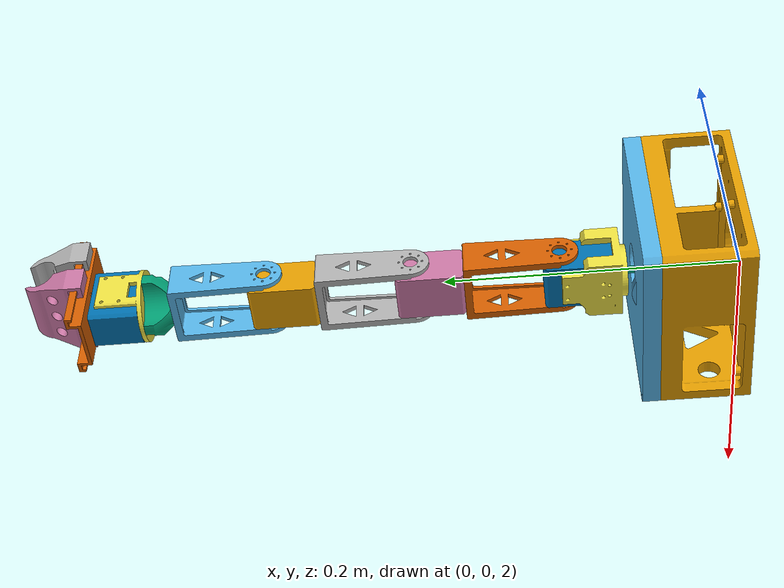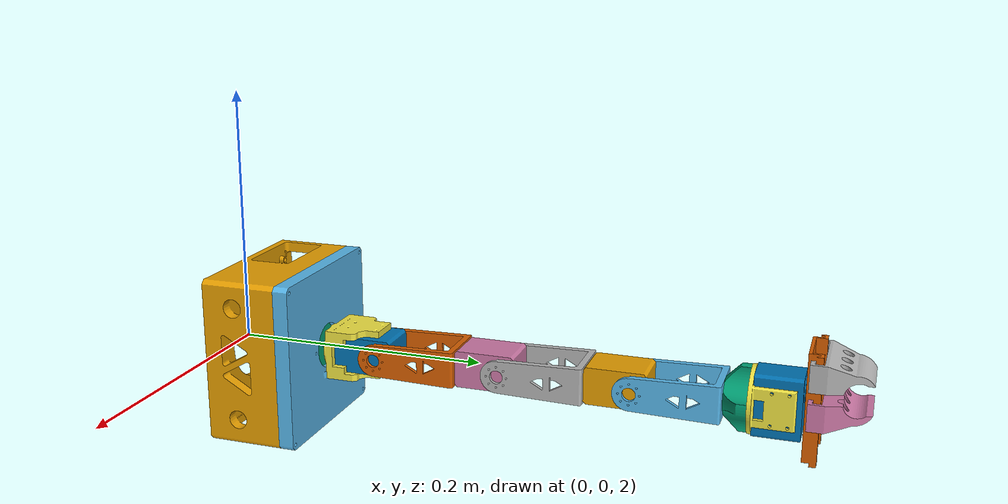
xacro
<?xml version="1.0"?>
<robot xmlns:xacro="http://wiki.ros.org/xacro" name="perseus">
  <xacro:arg name="transmission_hw_interface" default="hardware_interface/PositionJointInterface"/>
  <xacro:arg name="parent" default="world"/>
  <xacro:arg name="namespace" default="perseus"/>
  <xacro:arg name="xyzpos" default="0.0 0.0 2.0"/>

  <!-- common -->
  <xacro:include filename="$(find perseus_description)/urdf/common.gazebo.xacro"/>

  <!-- perseus -->
  <xacro:include filename="$(find perseus_description)/urdf/perseus.urdf.xacro"/>
  <xacro:perseus_arm transmission_hw_interface="$(arg transmission_hw_interface)" namespace="$(arg namespace)"/>

  <!-- Link robot to world -->
  <link name="$(arg parent)"/>

  <joint name="anchor_joint" type="fixed">
    <parent link="$(arg parent)"/>
    <child link="$(arg namespace)/base"/>
    <origin rpy="0 0 0" xyz="$(arg xyzpos)"/>
  </joint>
</robot>

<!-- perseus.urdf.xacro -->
<robot xmlns:xacro="http://wiki.ros.org/xacro">
  <xacro:include filename="$(find perseus_description)/urdf/perseus.transmission.xacro"/>
  <xacro:include filename="$(find perseus_description)/urdf/perseus.gazebo.xacro"/>

  <xacro:macro name="perseus_arm" params="transmission_hw_interface namespace">
    <xacro:property name="scale" value="0.001"/>
    <xacro:property name="joint_scale" value="1"/>
    <!-- Start of main robot body -->
    <link name="${namespace}/base">
      <inertial>
        <origin rpy="0 0 0" xyz="0.009606900148155705 0.025047580656759237 0.0006409385755152207"/>
        <mass value="0.20859614956718134"/>
        <inertia ixx="0.000557" ixy="-1e-06" ixz="-4.8e-05" iyy="0.000924" iyz="-3e-06" izz="0.000556"/>
      </inertial>
      <visual>
        <origin rpy="0 0 0" xyz="0 0 0"/>
        <geometry>
          <mesh filename="package://perseus_description/meshes/base_link.stl" scale="${scale} ${scale} ${scale}"/>
        </geometry>
      </visual>
      <collision>
        <origin rpy="0 0 0" xyz="0 0 0"/>
        <geometry>
          <mesh filename="package://perseus_description/meshes/base_link.stl" scale="${scale} ${scale} ${scale}"/>
        </geometry>
      </collision>
    </link>

    <link name="${namespace}/basePlate_v18_1">
      <inertial>
        <origin rpy="0 0 0" xyz="0.06080674862882992 0.007989157863473588 0.060697501122834334"/>
        <mass value="0.10739714114224669"/>
        <inertia ixx="0.000185" ixy="0.0" ixz="-0.0" iyy="0.00038" iyz="0.0" izz="0.000198"/>
      </inertial>
      <visual>
        <origin rpy="0 0 0" xyz="0.060705 -0.060123 0.060773"/>
        <geometry>
          <mesh filename="package://perseus_description/meshes/basePlate_v18_1.stl" scale="${scale} ${scale} ${scale}"/>
        </geometry>
      </visual>
      <collision>
        <origin rpy="0 0 0" xyz="0.060705 -0.060123 0.060773"/>
        <geometry>
          <mesh filename="package://perseus_description/meshes/basePlate_v18_1.stl" scale="${scale} ${scale} ${scale}"/>
        </geometry>
      </collision>
    </link>

    <link name="${namespace}/Stepper_v5_1">
      <inertial>
        <origin rpy="0 0 0" xyz="5.218509840461329e-08 -0.009658638044550236 3.7698044210816435e-07"/>
        <mass value="0.164439959012558"/>
        <inertia ixx="1.9e-05" ixy="-0.0" ixz="-0.0" iyy="2.7e-05" iyz="0.0" izz="2e-05"/>
      </inertial>
      <visual>
        <origin rpy="0 0 0" xyz="-0.000104 -0.067623 2.3e-05"/>
        <geometry>
          <mesh filename="package://perseus_description/meshes/Stepper_v5_1.stl" scale="${scale} ${scale} ${scale}"/>
        </geometry>
      </visual>
      <collision>
        <origin rpy="0 0 0" xyz="-0.000104 -0.067623 2.3e-05"/>
        <geometry>
          <mesh filename="package://perseus_description/meshes/Stepper_v5_1.stl" scale="${scale} ${scale} ${scale}"/>
        </geometry>
      </collision>
    </link>

    <link name="${namespace}/link1_v12_1">
      <inertial>
        <origin rpy="0 0 0" xyz="-0.0005835884695255211 0.011699826982647002 2.0584927118683997e-05"/>
        <mass value="0.026558895460486103"/>
        <inertia ixx="9e-06" ixy="0.0" ixz="-0.0" iyy="1e-05" iyz="0.0" izz="8e-06"/>
      </inertial>
      <visual>
        <origin rpy="0 0 0" xyz="-0.000104 -0.080623 2.3e-05"/>
        <geometry>
          <mesh filename="package://perseus_description/meshes/link1_v12_1.stl" scale="${scale} ${scale} ${scale}"/>
        </geometry>
      </visual>
      <collision>
        <origin rpy="0 0 0" xyz="-0.000104 -0.080623 2.3e-05"/>
        <geometry>
          <mesh filename="package://perseus_description/meshes/link1_v12_1.stl" scale="${scale} ${scale} ${scale}"/>
        </geometry>
      </collision>
    </link>

    <link name="${namespace}/Dynamixel_1_1">
      <inertial>
        <origin rpy="0 0 0" xyz="-3.990798697923084e-05 0.023425508667773945 3.9032703642453347e-07"/>
        <mass value="0.356701544919362"/>
        <inertia ixx="8.7e-05" ixy="0.0" ixz="0.0" iyy="5.9e-05" iyz="-0.0" izz="9.9e-05"/>
      </inertial>
      <visual>
        <origin rpy="0 0 0" xyz="-0.000104 -0.085773 2.3e-05"/>
        <geometry>
          <mesh filename="package://perseus_description/meshes/Dynamixel_1_1.stl" scale="${scale} ${scale} ${scale}"/>
        </geometry>
      </visual>
      <collision>
        <origin rpy="0 0 0" xyz="-0.000104 -0.085773 2.3e-05"/>
        <geometry>
          <mesh filename="package://perseus_description/meshes/Dynamixel_1_1.stl" scale="${scale} ${scale} ${scale}"/>
        </geometry>
      </collision>
    </link>

    <link name="${namespace}/Link_v5_1">
      <inertial>
        <origin rpy="0 0 0" xyz="0.019404821558247024 0.037443419960172294 3.83299057001476e-07"/>
        <mass value="0.01662330410690611"/>
        <inertia ixx="1e-05" ixy="-0.0" ixz="0.0" iyy="7e-06" iyz="-0.0" izz="1.5e-05"/>
      </inertial>
      <visual>
        <origin rpy="0 0 0" xyz="0.018896 -0.121024 2.2e-05"/>
        <geometry>
          <mesh filename="package://perseus_description/meshes/Link_v5_1.stl" scale="${scale} ${scale} ${scale}"/>
        </geometry>
      </visual>
      <collision>
        <origin rpy="0 0 0" xyz="0.018896 -0.121024 2.2e-05"/>
        <geometry>
          <mesh filename="package://perseus_description/meshes/Link_v5_1.stl" scale="${scale} ${scale} ${scale}"/>
        </geometry>
      </collision>
    </link>

    <link name="${namespace}/Dynamixel_2_1">
      <inertial>
        <origin rpy="0 0 0" xyz="-3.9907986979175033e-05 0.023425071019905652 3.055729170690188e-07"/>
        <mass value="0.356701544919362"/>
        <inertia ixx="8.7e-05" ixy="0.0" ixz="0.0" iyy="5.9e-05" iyz="-0.0" izz="9.9e-05"/>
      </inertial>
      <visual>
        <origin rpy="0 0 0" xyz="-0.000504 -0.186324 2.2e-05"/>
        <geometry>
          <mesh filename="package://perseus_description/meshes/Dynamixel_2_1.stl" scale="${scale} ${scale} ${scale}"/>
        </geometry>
      </visual>
      <collision>
        <origin rpy="0 0 0" xyz="-0.000504 -0.186324 2.2e-05"/>
        <geometry>
          <mesh filename="package://perseus_description/meshes/Dynamixel_2_1.stl" scale="${scale} ${scale} ${scale}"/>
        </geometry>
      </collision>
    </link>

    <link name="${namespace}/Link_v5__1__1">
      <inertial>
        <origin rpy="0 0 0" xyz="0.02095482155824711 0.037442982312304 2.985449376563934e-07"/>
        <mass value="0.01662330410690611"/>
        <inertia ixx="1e-05" ixy="-0.0" ixz="0.0" iyy="7e-06" iyz="-0.0" izz="1.5e-05"/>
      </inertial>
      <visual>
        <origin rpy="0 0 0" xyz="0.019496 -0.221575 2.1e-05"/>
        <geometry>
          <mesh filename="package://perseus_description/meshes/Link_v5__1__1.stl" scale="${scale} ${scale} ${scale}"/>
        </geometry>
      </visual>
      <collision>
        <origin rpy="0 0 0" xyz="0.019496 -0.221575 2.1e-05"/>
        <geometry>
          <mesh filename="package://perseus_description/meshes/Link_v5__1__1.stl" scale="${scale} ${scale} ${scale}"/>
        </geometry>
      </collision>
    </link>

    <link name="${namespace}/Dynamixel_3_1">
      <inertial>
        <origin rpy="0 0 0" xyz="-3.990798697908857e-05 0.023424633372037318 2.208187977353406e-07"/>
        <mass value="0.356701544919362"/>
        <inertia ixx="8.7e-05" ixy="0.0" ixz="0.0" iyy="5.9e-05" iyz="-0.0" izz="9.9e-05"/>
      </inertial>
      <visual>
        <origin rpy="0 0 0" xyz="-0.001454 -0.286875 2.1e-05"/>
        <geometry>
          <mesh filename="package://perseus_description/meshes/Dynamixel_3_1.stl" scale="${scale} ${scale} ${scale}"/>
        </geometry>
      </visual>
      <collision>
        <origin rpy="0 0 0" xyz="-0.001454 -0.286875 2.1e-05"/>
        <geometry>
          <mesh filename="package://perseus_description/meshes/Dynamixel_3_1.stl" scale="${scale} ${scale} ${scale}"/>
        </geometry>
      </collision>
    </link>

    <link name="${namespace}/Link_v5__2__1">
      <inertial>
        <origin rpy="0 0 0" xyz="0.02095482155824717 0.037443544664435724 2.1379081833307952e-07"/>
        <mass value="0.01662330410690611"/>
        <inertia ixx="1e-05" ixy="-0.0" ixz="0.0" iyy="7e-06" iyz="-0.0" izz="1.5e-05"/>
      </inertial>
      <visual>
        <origin rpy="0 0 0" xyz="0.018546 -0.322125 2e-05"/>
        <geometry>
          <mesh filename="package://perseus_description/meshes/Link_v5__2__1.stl" scale="${scale} ${scale} ${scale}"/>
        </geometry>
      </visual>
      <collision>
        <origin rpy="0 0 0" xyz="0.018546 -0.322125 2e-05"/>
        <geometry>
          <mesh filename="package://perseus_description/meshes/Link_v5__2__1.stl" scale="${scale} ${scale} ${scale}"/>
        </geometry>
      </collision>
    </link>

    <link name="${namespace}/gripL2_v14_1">
      <inertial>
        <origin rpy="0 0 0" xyz="5.2185256943851344e-08 0.009822354343600626 1.2271808408696706e-07"/>
        <mass value="0.013959782041853887"/>
        <inertia ixx="2e-06" ixy="0.0" ixz="-0.0" iyy="3e-06" iyz="0.0" izz="2e-06"/>
      </inertial>
      <visual>
        <origin rpy="0 0 0" xyz="-0.002404 -0.387425 2e-05"/>
        <geometry>
          <mesh filename="package://perseus_description/meshes/gripL2_v14_1.stl" scale="${scale} ${scale} ${scale}"/>
        </geometry>
      </visual>
      <collision>
        <origin rpy="0 0 0" xyz="-0.002404 -0.387425 2e-05"/>
        <geometry>
          <mesh filename="package://perseus_description/meshes/gripL2_v14_1.stl" scale="${scale} ${scale} ${scale}"/>
        </geometry>
      </collision>
    </link>

    <link name="${namespace}/gripL1_v7_1">
      <inertial>
        <origin rpy="0 0 0" xyz="5.2185103533147065e-08 0.009633445542812646 9.474598607199126e-05"/>
        <mass value="0.011468373721129618"/>
        <inertia ixx="3e-06" ixy="0.0" ixz="0.0" iyy="4e-06" iyz="0.0" izz="4e-06"/>
      </inertial>
      <visual>
        <origin rpy="0 0 0" xyz="-0.002404 -0.405425 2e-05"/>
        <geometry>
          <mesh filename="package://perseus_description/meshes/gripL1_v7_1.stl" scale="${scale} ${scale} ${scale}"/>
        </geometry>
      </visual>
      <collision>
        <origin rpy="0 0 0" xyz="-0.002404 -0.405425 2e-05"/>
        <geometry>
          <mesh filename="package://perseus_description/meshes/gripL1_v7_1.stl" scale="${scale} ${scale} ${scale}"/>
        </geometry>
      </collision>
    </link>

    <link name="${namespace}/ModifiedDynamixel_v12_1">
      <inertial>
        <origin rpy="0 0 0" xyz="3.8838509168730856e-08 0.01704002455162823 0.00017511907776649003"/>
        <mass value="0.35670154491936157"/>
        <inertia ixx="9.9e-05" ixy="0.0" ixz="0.0" iyy="8.7e-05" iyz="-0.0" izz="5.9e-05"/>
      </inertial>
      <visual>
        <origin rpy="0 0 0" xyz="-0.002404 -0.408425 2e-05"/>
        <geometry>
          <mesh filename="package://perseus_description/meshes/ModifiedDynamixel_v12_1.stl" scale="${scale} ${scale} ${scale}"/>
        </geometry>
      </visual>
      <collision>
        <origin rpy="0 0 0" xyz="-0.002404 -0.408425 2e-05"/>
        <geometry>
          <mesh filename="package://perseus_description/meshes/ModifiedDynamixel_v12_1.stl" scale="${scale} ${scale} ${scale}"/>
        </geometry>
      </collision>
    </link>

    <link name="${namespace}/EETrack_rebuild_v6_1">
      <inertial>
        <origin rpy="0 0 0" xyz="0.0005882832570395739 0.0030255190907269025 -0.007437121872838118"/>
        <mass value="0.01274507441724117"/>
        <inertia ixx="7e-06" ixy="0.0" ixz="-0.0" iyy="1e-05" iyz="-0.0" izz="3e-06"/>
      </inertial>
      <visual>
        <origin rpy="0 0 0" xyz="-0.002403 -0.445425 -0.011981"/>
        <geometry>
          <mesh filename="package://perseus_description/meshes/EETrack_rebuild_v6_1.stl" scale="${scale} ${scale} ${scale}"/>
        </geometry>
      </visual>
      <collision>
        <origin rpy="0 0 0" xyz="-0.002403 -0.445425 -0.011981"/>
        <geometry>
          <mesh filename="package://perseus_description/meshes/EETrack_rebuild_v6_1.stl" scale="${scale} ${scale} ${scale}"/>
        </geometry>
      </collision>
    </link>

    <link name="${namespace}/Grip_v5_1">
      <inertial>
        <origin rpy="0 0 0" xyz="1.3652826758372982e-07 0.013322586240661238 -0.009633875691665562"/>
        <mass value="0.019987551824594305"/>
        <inertia ixx="2e-06" ixy="-0.0" ixz="-0.0" iyy="6e-06" iyz="-0.0" izz="7e-06"/>
      </inertial>
      <visual>
        <origin rpy="0 0 0" xyz="-0.002403 -0.450625 -0.011981"/>
        <geometry>
          <mesh filename="package://perseus_description/meshes/Grip_v5_1.stl" scale="${scale} ${scale} ${scale}"/>
        </geometry>
      </visual>
      <collision>
        <origin rpy="0 0 0" xyz="-0.002403 -0.450625 -0.011981"/>
        <geometry>
          <mesh filename="package://perseus_description/meshes/Grip_v5_1.stl" scale="${scale} ${scale} ${scale}"/>
        </geometry>
      </collision>
    </link>

    <link name="${namespace}/Grip_v5__1__1">
      <inertial>
        <origin rpy="0 0 0" xyz="-0.03439086293294389 -0.4309024137593389 0.05460097586221573"/>
        <mass value="0.019987551824594305"/>
        <inertia ixx="2e-06" ixy="0.0" ixz="-0.0" iyy="6e-06" iyz="0.0" izz="7e-06"/>
      </inertial>
      <visual>
        <origin rpy="0 0 0" xyz="-0.037423 -0.89485 0.031987"/>
        <geometry>
          <mesh filename="package://perseus_description/meshes/Grip_v5__1__1.stl" scale="${scale} ${scale} ${scale}"/>
        </geometry>
      </visual>
      <collision>
        <origin rpy="0 0 0" xyz="-0.037423 -0.89485 0.031987"/>
        <geometry>
          <mesh filename="package://perseus_description/meshes/Grip_v5__1__1.stl" scale="${scale} ${scale} ${scale}"/>
        </geometry>
      </collision>
    </link>

    <joint name="${namespace}/Rigid1" type="fixed">
      <origin rpy="0 0 0" xyz="${joint_scale*-0.060705} ${joint_scale*0.060123} ${joint_scale*-0.060773}"/>
      <parent link="${namespace}/base"/>
      <child link="${namespace}/basePlate_v18_1"/>
    </joint>

    <joint name="${namespace}/Rigid2" type="fixed">
      <origin rpy="0 0 0" xyz="${joint_scale*0.060809} ${joint_scale*0.0075} ${joint_scale*0.06075}"/>
      <parent link="${namespace}/basePlate_v18_1"/>
      <child link="${namespace}/Stepper_v5_1"/>
    </joint>

    <joint name="${namespace}/Rev3" type="revolute">
      <origin rpy="0 0 0" xyz="0.0 ${joint_scale*0.013} 0.0"/>
      <parent link="${namespace}/Stepper_v5_1"/>
      <child link="${namespace}/link1_v12_1"/>
      <axis xyz="-0.0 1.0 0.0"/>
      <limit effort="100" lower="0.0" upper="6.108652" velocity="100"/>
    </joint>

    <joint name="${namespace}/Rigid4" type="fixed">
      <origin rpy="0 0 0" xyz="0.0 ${joint_scale*0.00515} 0.0"/>
      <parent link="${namespace}/link1_v12_1"/>
      <child link="${namespace}/Dynamixel_1_1"/>
    </joint>

    <joint name="${namespace}/Rev5" type="revolute">
      <origin rpy="0 0 0" xyz="${joint_scale*-0.019} 0.035251 ${joint_scale*1e-06}"/>
      <parent link="${namespace}/Dynamixel_1_1"/>
      <child link="${namespace}/Link_v5_1"/>
      <axis xyz="-1.0 -0.0 0.0"/>
      <limit effort="100" lower="-1.570796" upper="1.570796" velocity="100"/>
    </joint>

    <joint name="${namespace}/Rigid6" type="fixed">
      <origin rpy="0 0 0" xyz="${joint_scale*0.0194} ${joint_scale*0.0653} 0.0"/>
      <parent link="${namespace}/Link_v5_1"/>
      <child link="${namespace}/Dynamixel_2_1"/>
    </joint>

    <joint name="${namespace}/Rev7" type="continuous">
      <origin rpy="0 0 0" xyz="${joint_scale*-0.02} ${joint_scale*0.035251} ${joint_scale*1e-06}"/>
      <parent link="${namespace}/Dynamixel_2_1"/>
      <child link="${namespace}/Link_v5__1__1"/>
      <axis xyz="-1.0 -0.0 0.0"/>
    </joint>

    <joint name="${namespace}/Rigid8" type="fixed">
      <origin rpy="0 0 0" xyz="${joint_scale*0.02095} ${joint_scale*0.0653} 0.0"/>
      <parent link="${namespace}/Link_v5__1__1"/>
      <child link="${namespace}/Dynamixel_3_1"/>
    </joint>

    <joint name="${namespace}/Rev9" type="revolute">
      <origin rpy="0 0 0" xyz="${joint_scale*-0.02} ${joint_scale*0.03525} ${joint_scale*1e-06}"/>
      <parent link="${namespace}/Dynamixel_3_1"/>
      <child link="${namespace}/Link_v5__2__1"/>
      <axis xyz="-1.0 -0.0 0.0"/>
      <limit effort="100" lower="-1.570796" upper="1.570796" velocity="100"/>
    </joint>

    <joint name="${namespace}/Rigid10" type="fixed">
      <origin rpy="0 0 0" xyz="${joint_scale*0.02095} ${joint_scale*0.0653} 0.0"/>
      <parent link="${namespace}/Link_v5__2__1"/>
      <child link="${namespace}/gripL2_v14_1"/>
    </joint>

    <joint name="${namespace}/Rigid12" type="fixed">
      <origin rpy="0 0 0" xyz="0.0 ${joint_scale*0.018} 0.0"/>
      <parent link="${namespace}/gripL2_v14_1"/>
      <child link="${namespace}/gripL1_v7_1"/>
    </joint>

    <joint name="${namespace}/Rigid13" type="fixed">
      <origin rpy="0 0 0" xyz="0.0 ${joint_scale*0.003} 0.0"/>
      <parent link="${namespace}/gripL1_v7_1"/>
      <child link="${namespace}/ModifiedDynamixel_v12_1"/>
    </joint>

    <joint name="${namespace}/Rigid14" type="fixed">
      <origin rpy="0 0 0" xyz="${joint_scale*-1e-06} ${joint_scale*0.037} ${joint_scale*0.012001}"/>
      <parent link="${namespace}/ModifiedDynamixel_v12_1"/>
      <child link="${namespace}/EETrack_rebuild_v6_1"/>
    </joint>

    <joint name="${namespace}/Slider16" type="prismatic">
      <origin rpy="0 0 0" xyz="0.0 ${joint_scale*0.0052} 0.0"/>
      <parent link="${namespace}/EETrack_rebuild_v6_1"/>
      <child link="${namespace}/Grip_v5_1"/>
      <axis xyz="0.0 -0.0 1.0"/>
      <limit effort="100" lower="-0.015" upper="0.0" velocity="100"/>
    </joint>

    <joint name="${namespace}/Slider17" type="prismatic">
      <origin rpy="0 0 0" xyz="${joint_scale*0.03502} ${joint_scale*0.449425} ${joint_scale*-0.043968}"/>
      <parent link="${namespace}/EETrack_rebuild_v6_1"/>
      <child link="${namespace}/Grip_v5__1__1"/>
      <axis xyz="0.0 -0.0 1.0"/>
      <limit effort="100" lower="0.0048" upper="0.01" velocity="100"/>
    </joint>

    <!-- Call required xacro macros -->
    <!-- Transmission -->
    <xacro:perseus_arm_transmission hw_interface="${transmission_hw_interface}" namespace="${namespace}"/>
      <!-- Gazebo macro -->
    <xacro:perseus_arm_gazebo namespace="${namespace}"/>

  </xacro:macro>

</robot>

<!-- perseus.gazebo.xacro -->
<robot name="perseus" xmlns:xacro="http://www.ros.org/wiki/xacro" >
  <xacro:macro name="perseus_arm_gazebo" params="namespace">
    <xacro:property name="body_color" value="Gazebo/Silver" />
    <gazebo reference="base_link">
      <material>${body_color}</material>
      <mu1>0.2</mu1>
      <mu2>0.2</mu2>
      <selfCollide>true</selfCollide>
      <gravity>true</gravity>
    </gazebo>
    <gazebo reference="basePlate_v18_1">
      <material>${body_color}</material>
      <mu1>0.2</mu1>
      <mu2>0.2</mu2>
      <selfCollide>true</selfCollide>
    </gazebo>
    <gazebo reference="Stepper_v5_1">
      <material>${body_color}</material>
      <mu1>0.2</mu1>
      <mu2>0.2</mu2>
      <selfCollide>true</selfCollide>
    </gazebo>
    <gazebo reference="link1_v12_1">
      <material>${body_color}</material>
      <mu1>0.2</mu1>
      <mu2>0.2</mu2>
      <selfCollide>true</selfCollide>
    </gazebo>
    <gazebo reference="Dynamixel_1_1">
      <material>${body_color}</material>
      <mu1>0.2</mu1>
      <mu2>0.2</mu2>
      <selfCollide>true</selfCollide>
    </gazebo>
    <gazebo reference="Link_v5_1">
      <material>${body_color}</material>
      <mu1>0.2</mu1>
      <mu2>0.2</mu2>
      <selfCollide>true</selfCollide>
    </gazebo>
    <gazebo reference="Dynamixel_2_1">
      <material>${body_color}</material>
      <mu1>0.2</mu1>
      <mu2>0.2</mu2>
      <selfCollide>true</selfCollide>
    </gazebo>
    <gazebo reference="Link_v5__1__1">
      <material>${body_color}</material>
      <mu1>0.2</mu1>
      <mu2>0.2</mu2>
      <selfCollide>true</selfCollide>
    </gazebo>
    <gazebo reference="Dynamixel_3_1">
      <material>${body_color}</material>
      <mu1>0.2</mu1>
      <mu2>0.2</mu2>
      <selfCollide>true</selfCollide>
    </gazebo>
    <gazebo reference="Link_v5__2__1">
      <material>${body_color}</material>
      <mu1>0.2</mu1>
      <mu2>0.2</mu2>
      <selfCollide>true</selfCollide>
    </gazebo>
    <gazebo reference="gripL2_v14_1">
      <material>${body_color}</material>
      <mu1>0.2</mu1>
      <mu2>0.2</mu2>
      <selfCollide>true</selfCollide>
    </gazebo>
    <gazebo reference="gripL1_v7_1">
      <material>${body_color}</material>
      <mu1>0.2</mu1>
      <mu2>0.2</mu2>
      <selfCollide>true</selfCollide>
    </gazebo>
    <gazebo reference="ModifiedDynamixel_v12_1">
      <material>${body_color}</material>
      <mu1>0.2</mu1>
      <mu2>0.2</mu2>
      <selfCollide>true</selfCollide>
    </gazebo>
    <gazebo reference="EETrack_rebuild_v6_1">
      <material>${body_color}</material>
      <mu1>0.2</mu1>
      <mu2>0.2</mu2>
      <selfCollide>true</selfCollide>
    </gazebo>
    <gazebo reference="Grip_v5_1">
      <material>${body_color}</material>
      <mu1>0.2</mu1>
      <mu2>0.2</mu2>
      <selfCollide>true</selfCollide>
    </gazebo>
    <gazebo reference="Grip_v5__1__1">
      <material>${body_color}</material>
      <mu1>0.2</mu1>
      <mu2>0.2</mu2>
      <selfCollide>true</selfCollide>
    </gazebo>
  </xacro:macro>
</robot>
